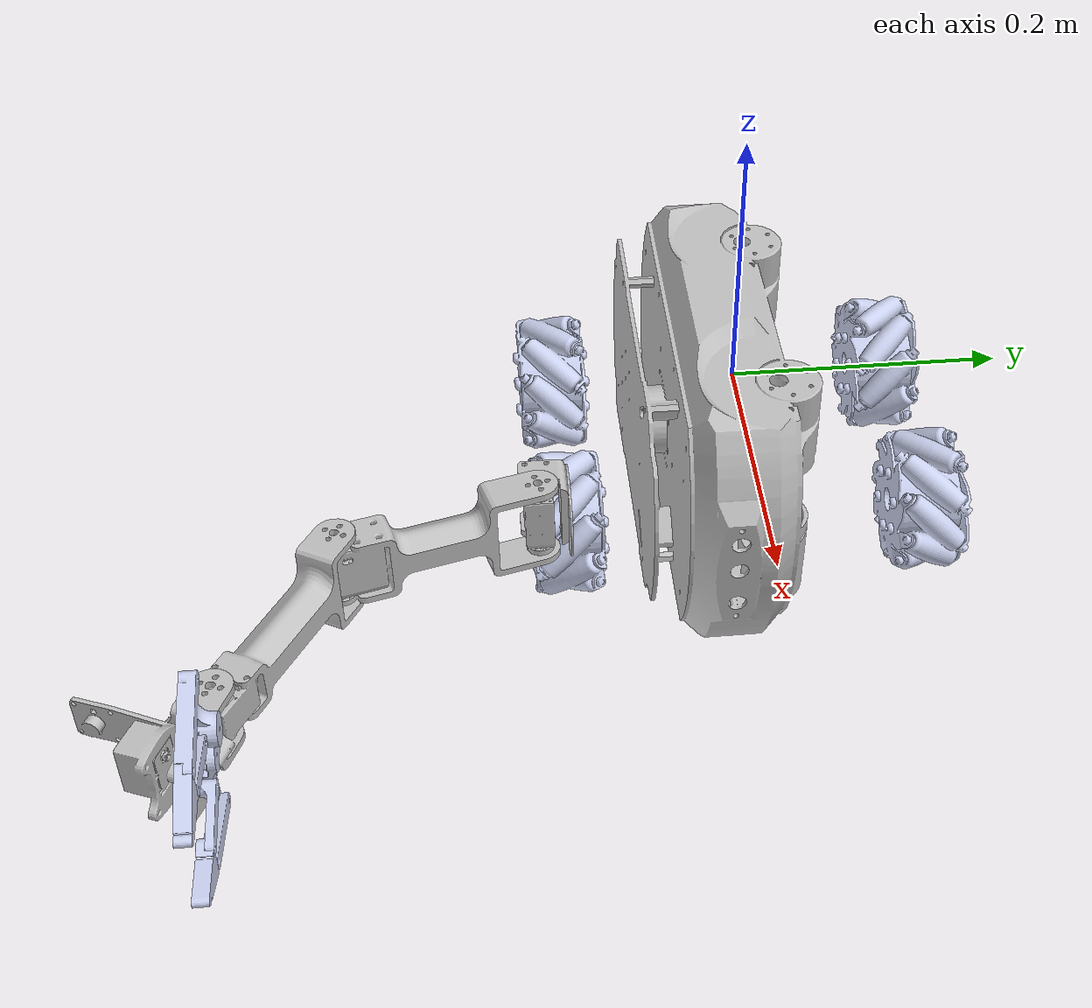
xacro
<?xml version="1.0" encoding="utf-8"?>
<robot xmlns:xacro="http://www.ros.org/wiki/xacro"  xmlns:gz="http://gazebosim.org/schema"
  name="mirte_master_description">

  <xacro:arg name="front_camera_enable" default="False" />
  <xacro:arg name="sonar_enable" default="False" />
  <xacro:arg name="lidar_enable" default="True" />
  <xacro:arg name="depth_camera_enable" default="False" />
  <xacro:arg name="imu_enable" default="False" />
  <xacro:arg name="wheels_enable" default="True" />
  <xacro:arg name="sim" default="True" />

  <xacro:arg name="use_correct_laser_frame" default="True" />

    <xacro:arg name="arm_enable" default="True" />
    <xacro:arg name="arm_collisions_enable" default="True" />
    <xacro:arg name="gripper_camera_enable" default="True" />
  <xacro:include filename="$(find mirte_master_description)/urdf/mirte_master_base.gazebo.xacro" />

  <link
    name="MIRTE_Master">
    <inertial>
      <origin
        xyz="0.0560559787388138 -0.046464113006352 -0.0107223863938312"
        rpy="0 0 0" />
      <mass
        value="2.87187694310402" />
      <inertia
        ixx="0.00268778032094885"
        ixy="5.35777394513109E-05"
        ixz="-1.34925830248996E-06"
        iyy="0.006197833679705"
        iyz="3.08873367085267E-06"
        izz="0.00472317803422592" />
    </inertial>
  </link>

<xacro:if value="$(arg wheels_enable)">

  <xacro:property name="wheel_radius" value="0.050" />
  <xacro:property name="wheel_length" value="0.055" />
  <xacro:property name="wheel_mass" value="0.15" />

  <xacro:property name="wheel_velocity" value="8" />
  <xacro:property name="wheel_effort" value="5" />
  <xacro:include filename="$(find mirte_master_description)/urdf/wheel.xacro" />
  <joint
    name="Wheels_joint"
    type="fixed">
    <parent
      link="MIRTE_Master" />
    <child
      link="Wheels" />
    <axis
      xyz="0 0 0" />
  </joint>
   <link
    name="Wheels">
    <inertial>
      <origin
        xyz="-1.48511945796681E-10 1.64047594952699E-12 -0.0630000002157284"
        rpy="0 0 0" />
      <mass
        value="1.06645993257182" />
      <inertia
        ixx="0.000322183176884843"
        ixy="-3.32280220325118E-11"
        ixz="8.60065297084518E-15"
        iyy="0.000372782415195671"
        iyz="1.24669808687478E-13"
        izz="0.000322183176907626" />
    </inertial>
  </link>
    <xacro:mecanum_wheel name="front_left" wheel_type="left" link_origin="0.025">
        <origin

        xyz="0.080503 0.1075 -0.063"
        rpy="0 0 0" />
    </xacro:mecanum_wheel>

    <xacro:mecanum_wheel name="front_right" wheel_type="right" link_origin="-0.025">
            <origin
        xyz="0.080503 ${-0.1075} -0.063"
        rpy="0 0 0"/>
    </xacro:mecanum_wheel>

    <xacro:mecanum_wheel name="rear_right" wheel_type="left" link_origin="0.025">
            <origin
        xyz="-0.080503 ${-0.1075-0.05} -0.063"
        rpy="0 0 0"/>
        <!-- pi -->
    </xacro:mecanum_wheel>
    <xacro:mecanum_wheel name="rear_left" wheel_type="right" link_origin="-0.025">
            <origin
        xyz="-0.080503 ${0.1075+0.05} -0.063"
        rpy="0 0 0"/>
    </xacro:mecanum_wheel>

</xacro:if>

  <xacro:if value="false">
  <link
    name="Wheels">
    <inertial>
      <origin
        xyz="-1.48511945796681E-10 1.64047594952699E-12 -0.0630000002157284"
        rpy="0 0 0" />
      <mass
        value="1.06645993257182" />
      <inertia
        ixx="0.000322183176884843"
        ixy="-3.32280220325118E-11"
        ixz="8.60065297084518E-15"
        iyy="0.000372782415195671"
        iyz="1.24669808687478E-13"
        izz="0.000322183176907626" />
    </inertial>
    <visual>
      <origin
        xyz="0 0 0"
        rpy="0 0 0" />
      <geometry>
        <mesh
          filename="package://mirte_master_description/meshes/Wheels.STL" />
      </geometry>
      <material
        name="">
        <color
          rgba="0.792156862745098 0.819607843137255 0.933333333333333 1" />
      </material>
    </visual>
  </link>
  <joint
    name="Wheels_joint"
    type="fixed">
    <origin
      xyz="0.0316698713027512 -0.052970257715017 -0.0113974879084128"
      rpy="1.5707963267949 0 2.66843002434429E-05" />
    <parent
      link="MIRTE_Master" />
    <child
      link="Wheels" />
    <axis
      xyz="0 0 0" />
  </joint>
  <link
    name="FL">
    <inertial>
      <origin
        xyz="1.64210277320276E-08 -0.0249358927959083 -2.9391208737628E-10"
        rpy="0 0 0" />
      <mass
        value="0.266614983225963" />
      <inertia
        ixx="8.05457942706572E-05"
        ixy="-8.27238041365495E-12"
        ixz="-2.59007136868674E-15"
        iyy="9.31956038958428E-05"
        iyz="4.62220656790577E-14"
        izz="8.05457942772177E-05" />
    </inertial>
    <visual>
      <origin
        xyz="0 0 0"
        rpy="0 0 0" />
      <geometry>
        <mesh
          filename="package://mirte_master_description/meshes/FL.STL" />
      </geometry>
      <material
        name="">
        <color
          rgba="0.792156862745098 0.819607843137255 0.933333333333333 1" />
      </material>
    </visual>
    <collision>
      <origin
        xyz="0 0 0"
        rpy="0 0 0" />
      <geometry>
        <mesh
          filename="package://mirte_master_description/meshes/FL.STL" />
      </geometry>
    </collision>
  </link>
  <joint
    name="FL_joint"
    type="continuous">
    <origin
      xyz="0.080503 0.1575 -0.063"
      rpy="0 0 0" />
    <parent
      link="Wheels" />
    <child
      link="FL" />
    <axis
      xyz="0 -1 0" />
  </joint>
  <link
    name="FR">
    <inertial>
      <origin
        xyz="-1.65950879149612E-08 0.0249358927992375 -1.90523770371431E-10"
        rpy="0 0 0" />
      <mass
        value="0.266614983059974" />
      <inertia
        ixx="8.05457941718005E-05"
        ixy="-8.31949817444523E-12"
        ixz="4.69589311634494E-15"
        iyy="9.31956037018452E-05"
        iyz="7.81709378490802E-14"
        izz="8.05457941763835E-05" />
    </inertial>
    <visual>
      <origin
        xyz="0 0 0"
        rpy="0 0 0" />
      <geometry>
        <mesh
          filename="package://mirte_master_description/meshes/FR.STL" />
      </geometry>
      <material
        name="">
        <color
          rgba="0.792156862745098 0.819607843137255 0.933333333333333 1" />
      </material>
    </visual>
    <collision>
      <origin
        xyz="0 0 0"
        rpy="0 0 0" />
      <geometry>
        <mesh
          filename="package://mirte_master_description/meshes/FR.STL" />
      </geometry>
    </collision>
  </link>
  <joint
    name="FR_joint"
    type="continuous">
    <origin
      xyz="0.080504 -0.1575 -0.063"
      rpy="0 0 0" />
    <parent
      link="Wheels" />
    <child
      link="FR" />
    <axis
      xyz="0 1 0" />
  </joint>
  <link
    name="BL">
    <inertial>
      <origin
        xyz="1.62607431200557E-08 -0.0250641072007451 -1.88689787752883E-10"
        rpy="0 0 0" />
      <mass
        value="0.266614983059831" />
      <inertia
        ixx="8.05457941712294E-05"
        ixy="-8.33444641627667E-12"
        ixz="1.83416165679779E-15"
        iyy="9.3195603703169E-05"
        iyz="7.7210144316527E-14"
        izz="8.05457941783177E-05" />
    </inertial>
    <visual>
      <origin
        xyz="0 0 0"
        rpy="0 0 0" />
      <geometry>
        <mesh
          filename="package://mirte_master_description/meshes/BL.STL" />
      </geometry>
      <material
        name="">
        <color
          rgba="0.792156862745098 0.819607843137255 0.933333333333333 1" />
      </material>
    </visual>
    <collision>
      <origin
        xyz="0 0 0"
        rpy="0 0 0" />
      <geometry>
        <mesh
          filename="package://mirte_master_description/meshes/BL.STL" />
      </geometry>
    </collision>
  </link>
  <joint
    name="BL_joint"
    type="continuous">
    <origin
      xyz="-0.080504 0.1575 -0.063"
      rpy="0 0 0" />
    <parent
      link="Wheels" />
    <child
      link="BL" />
    <axis
      xyz="0 -1 0" />
  </joint>
  <link
    name="BR">
    <inertial>
      <origin
        xyz="-1.66801963491503E-08 0.0250641072040845 -1.89932769165124E-10"
        rpy="0 0 0" />
      <mass
        value="0.266614983226053" />
      <inertia
        ixx="8.05457942711553E-05"
        ixy="-8.30169702797618E-12"
        ixz="4.66066887817491E-15"
        iyy="9.31956038948138E-05"
        iyz="-7.69333387336657E-14"
        izz="8.05457942757067E-05" />
    </inertial>
    <visual>
      <origin
        xyz="0 0 0"
        rpy="0 0 0" />
      <geometry>
        <mesh
          filename="package://mirte_master_description/meshes/BR.STL" />
      </geometry>
      <material
        name="">
        <color
          rgba="0.792156862745098 0.819607843137255 0.933333333333333 1" />
      </material>
    </visual>
    <collision>
      <origin
        xyz="0 0 0"
        rpy="0 0 0" />
      <geometry>
        <mesh
          filename="package://mirte_master_description/meshes/BR.STL" />
      </geometry>
    </collision>
  </link>
  <joint
    name="BR_joint"
    type="continuous">
    <origin
      xyz="-0.080503 -0.1575 -0.063"
      rpy="0 0 0" />
    <parent
      link="Wheels" />
    <child
      link="BR" />
    <axis
      xyz="0 -1 0" />
  </joint>

</xacro:if>

  <xacro:if value="$(arg arm_enable)">
    <xacro:include filename="$(find mirte_master_description)/urdf/arm2.xacro" />
  </xacro:if>
  <link
    name="base_link">
    <inertial>
      <origin
        xyz="0.0344310118221643 -0.0286648891259541 -0.0113871267936065"
        rpy="0 0 0" />
      <mass
        value="1.45644924765411" />
      <inertia
        ixx="0.00217714063325471"
        ixy="-2.06524983331219E-06"
        ixz="1.37759237913749E-07"
        iyy="0.0057166253061052"
        iyz="-1.79629082951655E-07"
        izz="0.00413489218717276" />
    </inertial>
    <visual>
      <origin
        xyz="0 0 0"
        rpy="0 0 0" />
      <geometry>
        <mesh
          filename="package://mirte_master_description/meshes/Base.STL" />
      </geometry>
      <material
        name="">
        <color
          rgba="0.752941176470588 0.752941176470588 0.752941176470588 1" />
      </material>
    </visual>
  </link>
  <joint
    name="Base_joint"
    type="fixed">
    <origin
      xyz="0 0 0"
      rpy="0 0 0" />
    <child
      link="MIRTE_Master" />
    <parent
      link="base_link" />
    <axis
      xyz="0 0 0" />
  </joint>
  <xacro:if value="$(arg depth_camera_enable)">
    <xacro:include filename="$(find mirte_master_description)/urdf/depth_cam.xacro" />
  </xacro:if>

  <xacro:if value="$(arg sonar_enable)">
    <xacro:include filename="$(find mirte_master_description)/urdf/ultrasonic.xacro" />

    <joint name="chassis_base_joint" type="fixed">
      <parent link="base_link" />
      <child link="link_chassis" />
    </joint>

    <link name="link_chassis" />

    <xacro:ultrasonic_sensor name="rear_left">
    <origin
      xyz="-0.10657 -0.0209239 0.071178"
      rpy="-1.5708 -0.54098 -3.1416" />
    </xacro:ultrasonic_sensor>

    <xacro:ultrasonic_sensor name="rear_right">
    <!-- TODO: check rotation of sonars -->
    <origin
      xyz="-0.10657 -0.0059239 -0.093973"
      rpy="-1.5708 0.54098 -3.1416" />
    </xacro:ultrasonic_sensor>
  </xacro:if>

  <xacro:if value="$(arg lidar_enable)">
    <xacro:include filename="$(find mirte_master_description)/urdf/lidarv2.xacro" />
  </xacro:if>

</robot>

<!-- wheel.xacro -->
<!-- Copied from github:ArendJan/mirte-gazebo branch rsp -->
<!-- Modified to remove the collision and change the minimum distance -->
<robot xmlns:xacro="http://www.ros.org/wiki/xacro" xmlns:gz="http://gazebosim.org/schema">
  <xacro:macro name="mecanum_wheel" params="name *origin link_origin wheel_type">

  <link
    name="${name}_wheel">
    <inertial>
             <origin xyz="0 ${link_origin} 0" rpy="${pi/2} 0 0" />
<!-- ${wheel_mass * (wheel_radius **2) / 2} -->
      <mass value="0.1" />
      <inertia
        ixx="${wheel_mass * (3 * (wheel_radius**2) + (wheel_length**2)) / 12}"
        iyy="${wheel_mass * (3 * (wheel_radius**2) + (wheel_length**2)) / 12}"
        izz="${wheel_mass * (3 * (wheel_radius**2) + (wheel_length**2)) / 12}"
        ixy="0" ixz="0" iyz="0" />
    </inertial>
    <visual>
      <geometry>
      <xacro:if value="${wheel_type == 'left'}">
        <mesh
          filename="package://mirte_master_description/meshes/BR.STL" />
      </xacro:if>
      <xacro:if value="${wheel_type == 'right'}">
        <mesh
          filename="package://mirte_master_description/meshes/BL.STL" />
      </xacro:if>
      </geometry>
      <material name="">
        <color rgba="0.79216 0.81961 0.93333 1" />
      </material>
    </visual>
    <collision>
      <origin xyz="0 ${link_origin} 0" rpy="${pi/2} 0 0" />
      <geometry>
        <sphere radius="${wheel_radius}" />
      </geometry>
    </collision>
  </link>

  <joint
    name="${name}_wheel_joint"
    type="continuous">
    <xacro:insert_block name="origin"/>
    <parent link="Wheels" />
    <child link="${name}_wheel" />
    <axis xyz="0 1 0" />
  </joint>

  <transmission name="${name}_wheel_transmission">
    <type>transmission_interface/SimpleTransmission</type>
    <joint name="${name}_wheel_joint">
      <hardwareInterface>hardware_interface/VelocityJointInterface</hardwareInterface>
    </joint>
    <actuator name="${name}_wheel_actuator">
      <mechanicalReduction>1</mechanicalReduction>
    </actuator>
  </transmission>

  </xacro:macro>
</robot>

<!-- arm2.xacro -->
<robot xmlns:xacro="http://www.ros.org/wiki/xacro">
    <link
    name="Arm">
    <inertial>
      <origin
        xyz="0.199878078588349 -0.00452321557552078 0.245475596940599"
        rpy="0 0 0" />
      <mass
        value="0.438578226451647" />
      <inertia
        ixx="0.000220377694326858"
        ixy="-1.48489357771068E-06"
        ixz="-5.53821777263242E-05"
        iyy="0.000249243731826793"
        iyz="-3.26836277134958E-06"
        izz="0.000214737746366638" />
    </inertial>
  </link>
  <joint
    name="Arm_joint"
    type="fixed">
    <origin
      xyz="0.00012036 -0.01012 -0.0024812"
      rpy="1.5708 0 0" />
    <parent
      link="MIRTE_Master" />
    <child
      link="Arm" />
    <axis
      xyz="0 0 0" />
  </joint>
  <link
    name="shoulder_pan">
    <inertial>
      <origin
        xyz="-0.00543776553160195 -0.000509501501145752 0.0285808246077279"
        rpy="0 0 0" />
      <mass
        value="0.0526781402686753" />
      <inertia
        ixx="1.27936978119511E-05"
        ixy="2.24649358664918E-07"
        ixz="3.24570783940582E-07"
        iyy="9.0108967812021E-06"
        iyz="3.19125827976664E-08"
        izz="1.70619631994108E-05" />
    </inertial>
    <visual>
      <origin
        xyz="0 0 0"
        rpy="0 0 0" />
      <geometry>
        <mesh
          filename="package://mirte_master_description/meshes/z-Rotation.STL" />
      </geometry>
      <material
        name="">
        <color
          rgba="0.752941176470588 0.752941176470588 0.752941176470588 1" />
      </material>
    </visual>
    <xacro:if value="$(arg arm_collisions_enable)">
    <collision>
      <origin
        xyz="0 0 0"
        rpy="0 0 0" />
      <geometry>
        <mesh
          filename="package://mirte_master_description/meshes/z-Rotation.STL" />
      </geometry>
    </collision>
    </xacro:if>
  </link>
  <joint
    name="shoulder_pan_joint"
    type="revolute">
    <origin
      xyz="0.121551322610448 -0.00891627722041789 0.110848128389983"
      rpy="0 0 0" />
    <parent
      link="Arm" />
    <child
      link="shoulder_pan" />
    <axis
      xyz="0 0 1" />
    <limit
            lower="${pi/-2}"
            upper="${pi/2}"
            effort="2.0"
            velocity="2.0"
        />
  </joint>
  <link
    name="shoulder_lift">
    <inertial>
      <origin
        xyz="0.0243247540835085 -0.0302970421840243 0.0844721417436619"
        rpy="0 0 0" />
      <mass
        value="0.102325054139096" />
      <inertia
        ixx="0.000110625274617278"
        ixy="8.06428564589689E-07"
        ixz="-2.1315067607945E-05"
        iyy="9.74019221425693E-05"
        iyz="-1.18220607812138E-06"
        izz="3.61861144527713E-05" />
    </inertial>
    <visual>
      <origin
        xyz="0 0 0"
        rpy="0 0 0" />
      <geometry>
        <mesh
          filename="package://mirte_master_description/meshes/Upperarm.STL" />
      </geometry>
      <material
        name="">
        <color
          rgba="0.752941176470588 0.752941176470588 0.752941176470588 1" />
      </material>
    </visual>
    <xacro:if value="$(arg arm_collisions_enable)">
    <collision>
      <origin
        xyz="0 0 0"
        rpy="0 0 0" />
      <geometry>
        <mesh
          filename="package://mirte_master_description/meshes/Upperarm.STL" />
      </geometry>
    </collision>
    </xacro:if>
  </link>
  <joint
    name="shoulder_lift_joint"
    type="revolute">
    <origin
      xyz="0.00380301601043069 0.0313794450114005 0.0332500000000377"
      rpy="0 0 0" />
    <parent
      link="shoulder_pan" />
    <child
      link="shoulder_lift" />
    <axis
      xyz="-0.0590713107277822 0.998253765455667 0" />
  <limit
            lower="${pi/-2}"
            upper="${pi/2}"
            effort="2.0"
            velocity="2.0"
        />
  </joint>
  <link
    name="elbow">
    <inertial>
      <origin
        xyz="0.0706772608618316 -0.027444951764167 0.0395073033756355"
        rpy="0 0 0" />
      <mass
        value="0.0911215389802598" />
      <inertia
        ixx="4.06272465991904E-05"
        ixy="-2.95497241375996E-06"
        ixz="-3.39941318616991E-05"
        iyy="9.04576214125665E-05"
        iyz="-2.00928077391389E-06"
        izz="8.03522239189564E-05" />
    </inertial>
    <visual>
      <origin
        xyz="0 0 0"
        rpy="0 0 0" />
      <geometry>
        <mesh
          filename="package://mirte_master_description/meshes/Forearm.STL" />
      </geometry>
      <material
        name="">
        <color
          rgba="0.752941176470588 0.752941176470588 0.752941176470588 1" />
      </material>
    </visual>
    <xacro:if value="$(arg arm_collisions_enable)">
    <collision>
      <origin
        xyz="0 0 0"
        rpy="0 0 0" />
      <geometry>
        <mesh
          filename="package://mirte_master_description/meshes/Forearm.STL" />
      </geometry>
    </collision>
    </xacro:if>
  </link>
  <joint
    name="elbow_joint"
    type="revolute">
    <origin
      xyz="0.036437928080887 0.00180537281653873 0.137006236814825"
      rpy="0 0 0" />
    <parent
      link="shoulder_lift" />
    <child
      link="elbow" />
    <axis
      xyz="-0.0590713107275747 0.998253765455679 0" />
    <limit
            lower="${pi/-2}"
            upper="${pi/2}"
            effort="2.0"
            velocity="2.0"
        />
  </joint>
  <link
    name="wrist">
    <inertial>
      <origin
        xyz="0.030457565932454 -0.0213199330141271 0.0246561263482211"
        rpy="0 0 0" />
      <mass
        value="0.0631657082718983" />
      <inertia
        ixx="1.94207147453815E-05"
        ixy="3.79658302272387E-07"
        ixz="9.22730385151376E-07"
        iyy="1.35649196766237E-05"
        iyz="6.81817829335488E-08"
        izz="1.75049753123464E-05" />
    </inertial>
    <visual>
      <origin
        xyz="0 0 0"
        rpy="0 0 0" />
      <geometry>
        <mesh
          filename="package://mirte_master_description/meshes/Wrist.STL" />
      </geometry>
      <material
        name="">
        <color
          rgba="0.752941176470588 0.752941176470588 0.752941176470588 1" />
      </material>
    </visual>
    <xacro:if value="$(arg arm_collisions_enable)">
    <collision>
      <origin
        xyz="0 0 0"
        rpy="0 0 0" />
      <geometry>
        <mesh
          filename="package://mirte_master_description/meshes/Wrist.STL" />
      </geometry>
    </collision>
    </xacro:if>
  </link>
  <joint
    name="wrist_joint"
    type="revolute">
    <origin
      xyz="0.124425999226755 0.000550856546668227 0.0712063710175444"
      rpy="0 0 0" />
    <parent
      link="elbow" />
    <child
      link="wrist" />
    <axis
      xyz="-0.0590713107276118 0.998253765455677 0" />
      <limit
            lower="${pi/-2}"
            upper="${pi/2}"
            effort="2.0"
            velocity="2.0"
        />
  </joint>
  <xacro:if value="False">
  <link
    name="gripper">
    <inertial>
      <origin
        xyz="0.0260104638193439 0.0194222325489568 0.0221346361100294"
        rpy="0 0 0" />
      <mass
        value="0.0189805948365668" />
      <inertia
        ixx="2.34101098127276E-06"
        ixy="3.22622491333076E-07"
        ixz="-8.17376363293455E-07"
        iyy="2.49216095826188E-06"
        iyz="1.86856580622951E-07"
        izz="3.84236227432968E-06" />
    </inertial>
    <visual>
      <origin
        xyz="0 0 0"
        rpy="0 0 0" />
      <geometry>
        <mesh
          filename="package://mirte_master_description/meshes/Gripper_Left.STL" />
      </geometry>
      <material
        name="">
        <color
          rgba="0.752941176470588 0.752941176470588 0.752941176470588 1" />
      </material>
    </visual>
    <xacro:if value="$(arg arm_collisions_enable)">
    <collision>
      <origin
        xyz="0 0 0"
        rpy="0 0 0" />
      <geometry>
        <mesh
          filename="package://mirte_master_description/meshes/Gripper_Left.STL" />
      </geometry>
    </collision>
    </xacro:if>
  </link>
  <joint
    name="gripper_joint"
    type="revolute">
    <origin
      xyz="0.0505382985096727 -0.00913040976600391 0.006318005818223"
      rpy="0 0 0" />
    <parent
      link="wrist" />
    <child
      link="gripper" />
    <axis
      xyz="-0.384044127181366 -0.0226909681284593 0.923035875978229" />
   <limit
            lower="-.20"
            upper="0.25"
            effort="2.0"
            velocity="2.0"
        />
  </joint>
  <link
    name="Gripper_Right">
    <inertial>
      <origin
        xyz="0.0251469938866446 -0.0152950047655913 0.0215607980324168"
        rpy="0 0 0" />
      <mass
        value="0.020696726381591" />
      <inertia
        ixx="2.64854872929009E-06"
        ixy="-2.65371466970767E-07"
        ixz="-7.63828524600313E-07"
        iyy="2.57591088627407E-06"
        iyz="-3.63820979056845E-07"
        izz="4.07757485928383E-06" />
    </inertial>
    <visual>
      <origin
        xyz="0 0 0"
        rpy="0 0 0" />
      <geometry>
        <mesh
          filename="package://mirte_master_description/meshes/Gripper_Right.STL" />
      </geometry>
      <material
        name="">
        <color
          rgba="0.752941176470588 0.752941176470588 0.752941176470588 1" />
      </material>
    </visual>
    <xacro:if value="$(arg arm_collisions_enable)">
    <collision>
      <origin
        xyz="0 0 0"
        rpy="0 0 0" />
      <geometry>
        <mesh
          filename="package://mirte_master_description/meshes/Gripper_Right.STL" />
      </geometry>
    </collision>
    </xacro:if>
  </link>
  <joint
    name="right_gripper_joint"
    type="revolute">
    <origin
      xyz="0.0519556772271228 -0.0330885198123082 0.00631876771813183"
      rpy="0 0 0" />
    <parent
      link="wrist" />
    <child
      link="Gripper_Right" />
    <axis
      xyz="-0.384044127181366 -0.0226909681284593 0.923035875978229" />
   <limit
            lower="-.20"
            upper="0.25"
            effort="2.0"
            velocity="2.0"
        />

  </joint>

  </xacro:if>
  <link
        name="gripper">
        <inertial>
            <origin
                xyz="0.0128439388984141 0.00467107677719844 -0.023531822516204"
                rpy="0 0 0" />
            <mass
                value="0.0109603788959771" />
            <inertia
                ixx="1.64287457972505E-06"
                ixy="-2.54915969005551E-10"
                ixz="-3.17766452649769E-07"
                iyy="2.96639543247368E-06"
                iyz="-7.8877045337556E-08"
                izz="1.49193844890504E-06" />
        </inertial>
        <visual>
            <origin
                xyz="0 0 0"
                rpy="0 0 0" />
            <geometry>
                <mesh
                    filename="package://mirte_master_description/meshes/Gripper.STL" />
            </geometry>
            <material
                name="">
                <color
                    rgba="0.792156862745098 0.819607843137255 0.933333333333333 1" />
            </material>
        </visual>
        <collision>
            <origin
                xyz="0 0 0"
                rpy="0 0 0" />
            <geometry>
                <mesh
                    filename="package://mirte_master_description/meshes/Gripper.STL" />
            </geometry>
        </collision>
    </link>
    <joint
        name="gripper_joint"
        type="revolute">
        <origin
            xyz="0.0435 -0.012 0.0045"
            rpy="-1.5708 0 0" />
        <parent
            link="wrist" />
        <child
            link="gripper" />
        <axis
            xyz="0 -1 0" />
        <limit
            lower="-.20"
            upper="0.25"
            effort="2.0"
            velocity="2.0"
        />
    </joint>

   <link
        name="_gripper_link_r">
        <inertial>
            <origin
                xyz="-1.28017477174502E-08 0.00327806945611438 -0.015628977594268"
                rpy="0 0 0" />
            <mass
                value="0.00257857268754656" />
            <inertia
                ixx="4.78055533789155E-07"
                ixy="-5.230783542464E-14"
                ixz="-2.66258471113313E-13"
                iyy="4.85504704619794E-07"
                iyz="-3.012555423281E-08"
                izz="3.42900323604584E-08" />
        </inertial>
        <visual>
            <origin
                xyz="0 0 0"
                rpy="0 0 0" />
            <geometry>
                <mesh
                    filename="package://mirte_master_description/meshes/_gripper_link_r.STL" />
            </geometry>
            <material
                name="">
                <color
                    rgba="0.792156862745098 0.819607843137255 0.933333333333333 1" />
            </material>
        </visual>
        <collision>
            <origin
                xyz="0 0 0"
                rpy="0 0 0" />
            <geometry>
                <mesh
                    filename="package://mirte_master_description/meshes/_gripper_link_r.STL" />
            </geometry>
        </collision>
    </link>
    <joint
        name="_gripper_link_joint_r"
        type="revolute">
        <origin
            xyz="0.0605 0.0205 -0.0055"
            rpy="1.5708 0 -1.3641" />
        <parent
            link="wrist" />
        <child
            link="_gripper_link_r" />
        <axis
            xyz="0 -1 0" />
        <limit
            lower="-3.14"
            upper="3.14"
            effort="0.0"
            velocity="0.0" />
        <mimic joint="gripper_joint" multiplier="1.4"/>
    </joint>

    <link
        name="gripper_finger_r">
        <inertial>
            <origin
                xyz="0.0053582194655247 0.00456985538673528 -0.0146658643393019"
                rpy="0 0 0" />
            <mass
                value="0.00531205810762776" />
            <inertia
                ixx="6.56191216382328E-07"
                ixy="4.9417968242523E-09"
                ixz="-1.23756532787867E-07"
                iyy="7.67327744037516E-07"
                iyz="3.35637410041389E-08"
                izz="1.97644006824673E-07" />
        </inertial>
        <visual>
            <origin
                xyz="0 0 0"
                rpy="0 0 0" />
            <geometry>
                <mesh
                    filename="package://mirte_master_description/meshes/gripper_finger_r.STL" />
            </geometry>
            <material
                name="">
                <color
                    rgba="0.792156862745098 0.819607843137255 0.933333333333333 1" />
            </material>
        </visual>
        <collision>
            <origin
                xyz="0 0 0"
                rpy="0 0 0" />
            <geometry>
                <mesh
                    filename="package://mirte_master_description/meshes/gripper_finger_r.STL" />
            </geometry>
        </collision>
    </link>
    <joint
        name="gripper_finger_joint_r"
        type="fixed">
        <origin
            xyz="0 0.01 -0.037"
            rpy="0 0.20667 3.1416" />
        <parent
            link="_gripper_link_r" />
        <child
            link="gripper_finger_r" />
        <axis
            xyz="0 0 1" />
    </joint>
    <link
        name="_gripper_link_l">
        <inertial>
            <origin
                xyz="-2.05686406795635E-09 0.00327805387383495 -0.0156289677422455"
                rpy="0 0 0" />
            <mass
                value="0.0025785751096632" />
            <inertia
                ixx="4.78055731035803E-07"
                ixy="1.11114248069431E-14"
                ixz="5.45978048241403E-14"
                iyy="4.85504889003676E-07"
                iyz="-3.01256260104972E-08"
                izz="3.4290092499709E-08" />
        </inertial>
        <visual>
            <origin
                xyz="0 0 0"
                rpy="0 0 0" />
            <geometry>
                <mesh
                    filename="package://mirte_master_description/meshes/_gripper_link_l.STL" />
            </geometry>
            <material
                name="">
                <color
                    rgba="0.792156862745098 0.819607843137255 0.933333333333333 1" />
            </material>
        </visual>
        <collision>
            <origin
                xyz="0 0 0"
                rpy="0 0 0" />
            <geometry>
                <mesh
                    filename="package://mirte_master_description/meshes/_gripper_link_l.STL" />
            </geometry>
        </collision>
    </link>
    <joint
        name="_gripper_link_joint_l"
        type="revolute">
        <origin
            xyz="0.0605 -0.0205 -0.0055"
            rpy="1.5708 0 -1.7775" />
        <parent
            link="wrist" />
        <child
            link="_gripper_link_l" />
        <axis
            xyz="0 -1 0" />
        <limit
            lower="-3.14"
            upper="3.14"
            effort="0.0"
            velocity="0.0" />
        <mimic joint="gripper_joint" multiplier="-1.4"/>
    </joint>
    <link
        name="gripper_finger_l">
        <inertial>
            <origin
                xyz="0.00535821399237165 0.00543015238565805 -0.0146658496889369"
                rpy="0 0 0" />
            <mass
                value="0.00531205810762777" />
            <inertia
                ixx="6.56191216382329E-07"
                ixy="-4.94179682425222E-09"
                ixz="-1.23756532787868E-07"
                iyy="7.67327744037519E-07"
                iyz="-3.35637410041387E-08"
                izz="1.97644006824674E-07" />
        </inertial>
        <visual>
            <origin
                xyz="0 0 0"
                rpy="0 0 0" />
            <geometry>
                <mesh
                    filename="package://mirte_master_description/meshes/gripper_finger_l.STL" />
            </geometry>
            <material
                name="">
                <color
                    rgba="0.792156862745098 0.819607843137255 0.933333333333333 1" />
            </material>
        </visual>
        <collision>
            <origin
                xyz="0 0 0"
                rpy="0 0 0" />
            <geometry>
                <mesh
                    filename="package://mirte_master_description/meshes/gripper_finger_l.STL" />
            </geometry>
        </collision>
    </link>
    <joint
        name="gripper_finger_joint_l"
        type="fixed">
        <origin
            xyz="0 0 -0.037"
            rpy="0 0.20667 0" />
        <parent
            link="_gripper_link_l" />
        <child
            link="gripper_finger_l" />
        <axis
            xyz="0 0 1" />
    </joint>
    <link
        name="_Gripper_r">
        <inertial>
            <origin
                xyz="-0.011058953981311 0.00572378908343621 -0.0203029402870159"
                rpy="0 0 0" />
            <mass
                value="0.0127576574866818" />
            <inertia
                ixx="1.91784274511554E-06"
                ixy="-2.13316668505462E-10"
                ixz="3.18097729104346E-07"
                iyy="3.19294602407598E-06"
                iyz="-1.86219200901589E-07"
                izz="1.63755141963222E-06" />
        </inertial>
        <visual>
            <origin
                xyz="0 0 0"
                rpy="0 0 0" />
            <geometry>
                <mesh
                    filename="package://mirte_master_description/meshes/_Gripper_r.STL" />
            </geometry>
            <material
                name="">
                <color
                    rgba="0.792156862745098 0.819607843137255 0.933333333333333 1" />
            </material>
        </visual>
        <collision>
            <origin
                xyz="0 0 0"
                rpy="0 0 0" />
            <geometry>
                <mesh
                    filename="package://mirte_master_description/meshes/_Gripper_r.STL" />
            </geometry>
        </collision>
    </link>
    <joint
        name="_Gripper_joint_r"
        type="revolute">
        <origin
            xyz="0.0435 0.012 0.0045"
            rpy="-1.5708 0 -3.1416" />
        <parent
            link="wrist" />
        <child
            link="_Gripper_r" />
        <axis
            xyz="0 -1 0" />
        <limit
            lower="-.25"
            upper="0.20"
            effort="2.0"
            velocity="2.0"
        />
        <mimic joint="gripper_joint" multiplier="-1"/>
    </joint>

  <link
    name="Arm_camera">
    <inertial>
      <origin
        xyz="-0.0058011133283864 -1.38777878078145E-17 0"
        rpy="0 0 0" />
      <mass
        value="0.00146668134870463" />
      <inertia
        ixx="3.95627642766835E-08"
        ixy="1.54888862881183E-23"
        ixz="-3.22600438895681E-23"
        iyy="3.26290734955815E-08"
        iyz="5.90860604542883E-24"
        izz="3.26290734955815E-08" />
    </inertial>
  </link>
        <xacro:if value="$(arg gripper_camera_enable)">
        <gazebo reference="Arm_camera">
        <sensor name="Arm_camera" type="camera">
        <update_rate>10</update_rate>
        <gz_frame_id>Arm_camera</gz_frame_id>
        <topic>/gripper_camera/image</topic>
        <camera>
          <horizontal_fov>1.05</horizontal_fov>
          <image>
            <width>256</width>
            <height>256</height>
          </image>
          <clip>
            <near>0.1</near>
            <far>10.0</far>
          </clip>
          <noise>
            <type>gaussian</type>
            <mean>0.0</mean>
            <stddev>0.007</stddev>
          </noise>
        </camera>
      </sensor>
      </gazebo>
      </xacro:if>
  <joint
    name="Arm_camera_joint"
    type="fixed">
    <origin
      xyz="0.00808405147922392 -0.0236577575521872 0.0749676192971127"
      rpy="-7.04933984956096E-05 -0.394897827073442 0.0591050619044624" />
    <parent
      link="wrist" />
    <child
      link="Arm_camera" />
    <axis
      xyz="0 0 1" />
  </joint>
<!-- TODO: fix grasp fix things -->

</robot>

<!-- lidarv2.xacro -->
<robot xmlns:xacro="http://www.ros.org/wiki/xacro">

  <link
    name="lidar_base">
    <inertial>
      <origin
        xyz="-3.16279539482045E-07 9.54386088163634E-05 -0.0118651639697618"
        rpy="0 0 0" />
      <mass
        value="0.100511981883324" />
      <inertia
        ixx="3.39518064050846E-05"
        ixy="2.51551620720405E-12"
        ixz="2.11349409641371E-10"
        iyy="3.4477810166857E-05"
        iyz="1.18155796489864E-07"
        izz="4.19358530903682E-05" />
    </inertial>
  </link>
  <joint
    name="LiDar_joint"
    type="fixed">
    <origin
      xyz="0.03167 -0.063182 -0.011397"
      rpy="0 0 0" />
    <parent
      link="base_link" />
    <child
      link="lidar_base" />
    <axis
      xyz="0 0 0" />
  </joint>

  <link name="lidar_link"></link>

  <joint name="lidar_joint" type="fixed">
    <origin rpy="${radians(90)} ${radians(0)} 0" />
    <parent link="lidar_base" />
    <child link="lidar_link" />
    <axis xyz="0 0 0" />
  </joint>

  <xacro:if value="$(arg use_correct_laser_frame)">
    <link name="laser"></link>

    <joint name="laser_joint" type="fixed">
      <origin xyz="0 0 0" rpy="0 0 ${radians(90)}" />
      <parent link="lidar_link" />
      <child link="laser" />
      <axis xyz="0 0 0" />
    </joint>
    <xacro:property name="lidar_sensor_link" value="laser" />
  </xacro:if>
  <xacro:unless value="$(arg use_correct_laser_frame)">
    <xacro:property name="lidar_sensor_link" value="lidar_link" />
  </xacro:unless>

  <gazebo reference="lidar_link">
        <sensor name="lidar" type="gpu_lidar">
              <pose relative_to='lidar_link'>0 0 0 0 0 0</pose>
          <gz_frame_id>lidar_link</gz_frame_id>
          <topic>/scan</topic>
            <pose> 0 0 0 0 0 0 </pose>
            <visualize>true</visualize>
            <update_rate>10</update_rate>
            <ray>
                <scan>
                    <horizontal>
                        <samples>360</samples>
                        <resolution>1</resolution>
                        <min_angle>-3.14</min_angle>
                        <max_angle>3.14</max_angle>
                    </horizontal>
                </scan>
                <range>
                    <min>0.03</min>
                    <max>12</max>
                    <resolution>0.01</resolution>
                </range>
            </ray>
        </sensor>
    </gazebo>

</robot>
